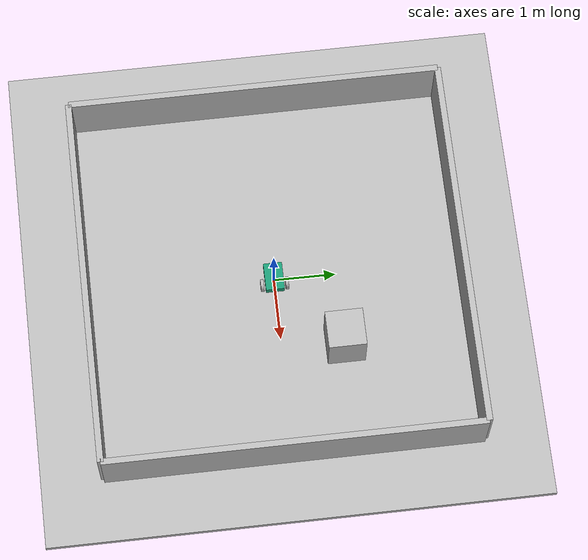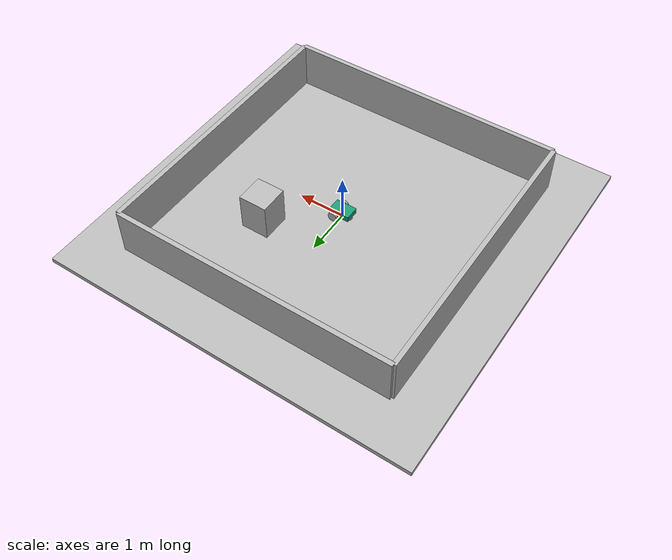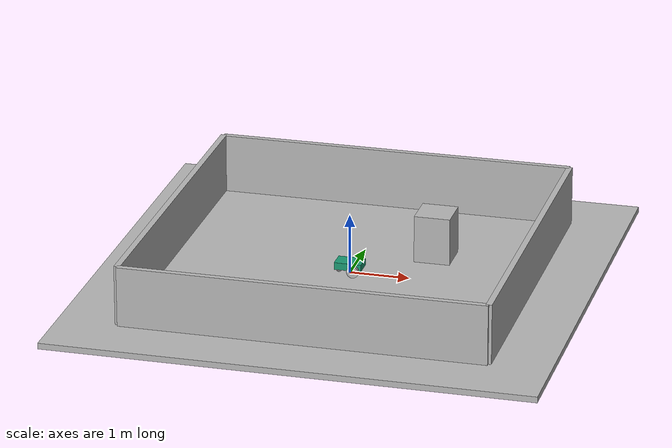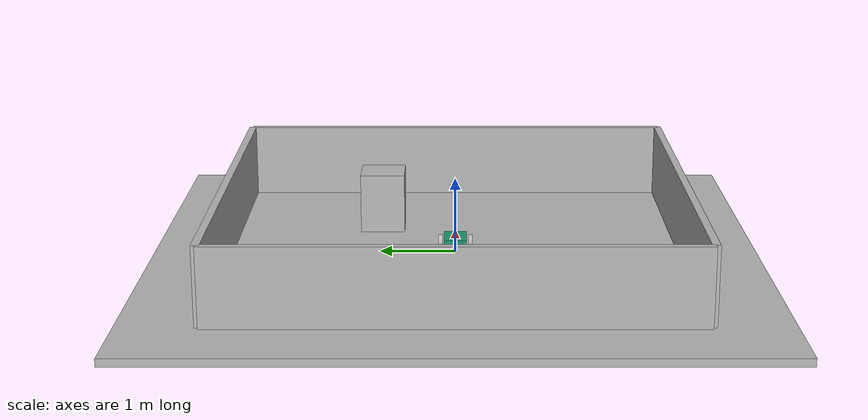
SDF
<?xml version="1.0"?>
<sdf version="1.9"><world name="research_room">
  <physics name="physics" type="ignored"><max_step_size>0.001</max_step_size><real_time_factor>1</real_time_factor></physics>
  <plugin filename="gz-sim-physics-system" name="gz::sim::systems::Physics"/>
  <plugin filename="gz-sim-user-commands-system" name="gz::sim::systems::UserCommands"/>
  <plugin filename="gz-sim-scene-broadcaster-system" name="gz::sim::systems::SceneBroadcaster"/>
  <plugin filename="gz-sim-sensors-system" name="gz::sim::systems::Sensors"><render_engine>ogre2</render_engine></plugin>
  <light name="sun" type="directional"><pose>0 0 10 0 0 0</pose><diffuse>0.9 0.9 0.9 1</diffuse><direction>-0.5 0.1 -0.9</direction></light>

<model name="floor"><static>true</static><pose>0 0 -0.05 0 0 0</pose><link name="link"><collision name="collision"><geometry><box><size>8 8 0.1</size></box></geometry></collision><visual name="visual"><geometry><box><size>8 8 0.1</size></box></geometry></visual></link></model>
<model name="north"><static>true</static><pose>0 3 0.5 0 0 0</pose><link name="link"><collision name="collision"><geometry><box><size>6 0.1 1</size></box></geometry></collision><visual name="visual"><geometry><box><size>6 0.1 1</size></box></geometry></visual></link></model>
<model name="south"><static>true</static><pose>0 -3 0.5 0 0 0</pose><link name="link"><collision name="collision"><geometry><box><size>6 0.1 1</size></box></geometry></collision><visual name="visual"><geometry><box><size>6 0.1 1</size></box></geometry></visual></link></model>
<model name="east"><static>true</static><pose>3 0 0.5 0 0 0</pose><link name="link"><collision name="collision"><geometry><box><size>0.1 6 1</size></box></geometry></collision><visual name="visual"><geometry><box><size>0.1 6 1</size></box></geometry></visual></link></model>
<model name="west"><static>true</static><pose>-3 0 0.5 0 0 0</pose><link name="link"><collision name="collision"><geometry><box><size>0.1 6 1</size></box></geometry></collision><visual name="visual"><geometry><box><size>0.1 6 1</size></box></geometry></visual></link></model>
<model name="obstacle"><static>true</static><pose>1.2 1 0.4 0 0 0</pose><link name="link"><collision name="collision"><geometry><box><size>0.6 0.6 0.8</size></box></geometry></collision><visual name="visual"><geometry><box><size>0.6 0.6 0.8</size></box></geometry></visual></link></model>
<model name="research_robot"><pose>0 0 0.15 0 0 0</pose>
  <link name="base_link">
    <inertial><mass>3</mass><inertia><ixx>0.0261</ixx><iyy>0.054225</iyy><izz>0.073125</izz></inertia></inertial>
    <collision name="body"><geometry><box><size>0.45 0.3 0.12</size></box></geometry></collision>
    <visual name="body"><geometry><box><size>0.45 0.3 0.12</size></box></geometry><material><diffuse>0.1 0.6 0.45 1</diffuse></material></visual>
    <sensor name="laser" type="gpu_lidar">
      <pose>0.1 0 0.18 0 0 0</pose><topic>/scan</topic><gz_frame_id>laser_frame</gz_frame_id>
      <always_on>true</always_on><update_rate>10</update_rate><visualize>true</visualize>
      <lidar><scan><horizontal><samples>360</samples><resolution>1</resolution><min_angle>-3.14159265</min_angle><max_angle>3.14159265</max_angle></horizontal></scan><range><min>0.08</min><max>8</max><resolution>0.01</resolution></range></lidar>
    </sensor>
  </link>
<link name="left_wheel"><pose>0.1 0.2 -0.05 1.57079632679 0 0</pose>
<inertial><mass>0.2</mass><inertia><ixx>0.000542</ixx><iyy>0.000542</iyy><izz>0.001</izz></inertia></inertial>
<collision name="wheel"><geometry><cylinder><radius>0.1</radius><length>0.05</length></cylinder></geometry><surface><friction><ode><mu>1</mu><mu2>1</mu2></ode></friction></surface></collision><visual name="wheel"><geometry><cylinder><radius>0.1</radius><length>0.05</length></cylinder></geometry></visual></link>
<joint name="left_joint" type="revolute"><parent>base_link</parent><child>left_wheel</child><axis><xyz expressed_in="__model__">0 1 0</xyz></axis></joint>
<link name="right_wheel"><pose>0.1 -0.2 -0.05 1.57079632679 0 0</pose>
<inertial><mass>0.2</mass><inertia><ixx>0.000542</ixx><iyy>0.000542</iyy><izz>0.001</izz></inertia></inertial>
<collision name="wheel"><geometry><cylinder><radius>0.1</radius><length>0.05</length></cylinder></geometry><surface><friction><ode><mu>1</mu><mu2>1</mu2></ode></friction></surface></collision><visual name="wheel"><geometry><cylinder><radius>0.1</radius><length>0.05</length></cylinder></geometry></visual></link>
<joint name="right_joint" type="revolute"><parent>base_link</parent><child>right_wheel</child><axis><xyz expressed_in="__model__">0 1 0</xyz></axis></joint>
<link name="caster"><pose>-0.18 0 -0.10 0 0 0</pose>
<inertial><mass>0.1</mass><inertia><ixx>0.0001</ixx><iyy>0.0001</iyy><izz>0.0001</izz></inertia></inertial>
<collision name="caster"><geometry><sphere><radius>0.05</radius></sphere></geometry><surface><friction><ode><mu>0</mu><mu2>0</mu2></ode></friction></surface></collision><visual name="caster"><geometry><sphere><radius>0.05</radius></sphere></geometry></visual></link>
<joint name="caster_fixed" type="fixed"><parent>base_link</parent><child>caster</child></joint>
<plugin filename="gz-sim-diff-drive-system" name="gz::sim::systems::DiffDrive">
<left_joint>left_joint</left_joint><right_joint>right_joint</right_joint><wheel_separation>0.4</wheel_separation><wheel_radius>0.1</wheel_radius>
<topic>/cmd_vel</topic><odom_topic>/odom</odom_topic><tf_topic>/tf</tf_topic><frame_id>odom</frame_id><child_frame_id>base_link</child_frame_id><odom_publish_frequency>30</odom_publish_frequency>
<max_linear_velocity>0.35</max_linear_velocity><min_linear_velocity>-0.35</min_linear_velocity><max_angular_velocity>1</max_angular_velocity><min_angular_velocity>-1</min_angular_velocity>
<max_linear_acceleration>0.5</max_linear_acceleration><min_linear_acceleration>-0.5</min_linear_acceleration>
</plugin></model></world></sdf>
